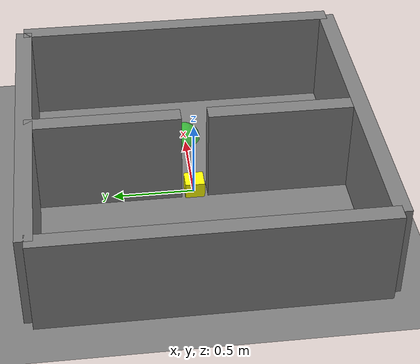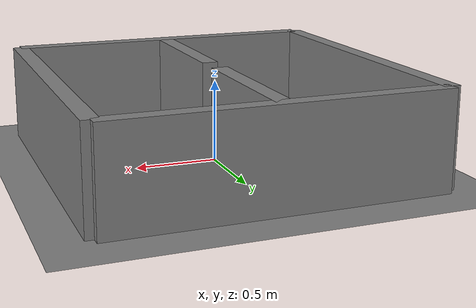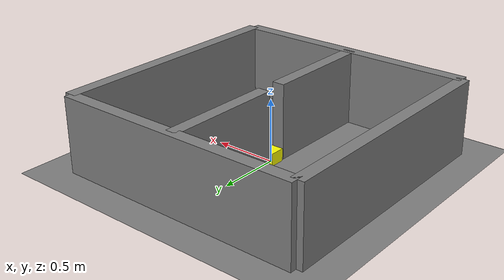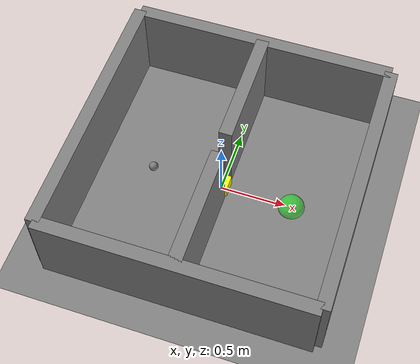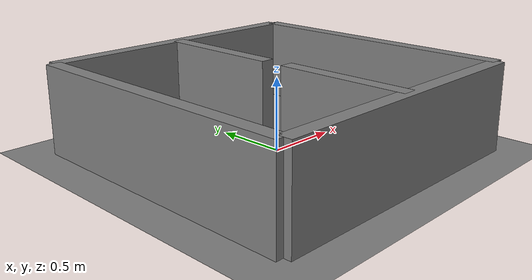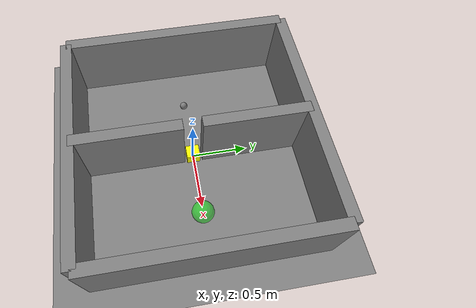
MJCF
<?xml version="1.0"?>
<mujoco model="region_boundary_overlap_fixture">
  <option cone="elliptic" integrator="RK4" timestep="0.01"/>
  <default>
    <geom density="1"/>
  </default>
  <worldbody>
    <geom name="floor" type="plane" size="0 0 0.05" friction="0.5 0.005 0.001" condim="4"/>
    <body name="walls">
      <geom name="wall_1" type="box" pos="-1 0 0.3" size="0.05 1 0.3"/>
      <geom name="wall_2" type="box" pos="1 0 0.3" size="0.05 1 0.3"/>
      <geom name="wall_3" type="box" pos="0 -1 0.3" size="1 0.05 0.3"/>
      <geom name="wall_4" type="box" pos="0 1 0.3" size="1 0.05 0.3"/>
      <geom name="divider_bottom" type="box" pos="0 -0.54 0.3" size="0.05 0.46 0.3"/>
      <geom name="divider_top" type="box" pos="0 0.54 0.3" size="0.05 0.46 0.3"/>
    </body>
    <body name="robot">
      <joint name="joint_x" type="slide" axis="1 0 0"/>
      <joint name="joint_y" type="slide" axis="0 1 0"/>
      <geom name="robot" type="sphere" pos="-0.55 0 0.035" size="0.035" mass="5" friction="1 0.005 0.0001" condim="4"/>
    </body>
    <body name="obstacle_1_movable">
      <joint type="free"/>
      <geom name="obstacle_1_movable" type="box" pos="0 0 0.05" size="0.06 0.06 0.05" mass="0.1" friction="0 0.005 0.001" condim="4" rgba="1 1 0 1"/>
    </body>
    <site name="goal" type="sphere" pos="0.55 0 0" size="0.1" rgba="0 1 0 0.5"/>
  </worldbody>
  <actuator>
    <velocity name="actuator_x" joint="joint_x" kv="50" ctrlrange="-0.5 0.5" forcerange="-20 20"/>
    <velocity name="actuator_y" joint="joint_y" kv="50" ctrlrange="-0.5 0.5" forcerange="-20 20"/>
  </actuator>
</mujoco>
